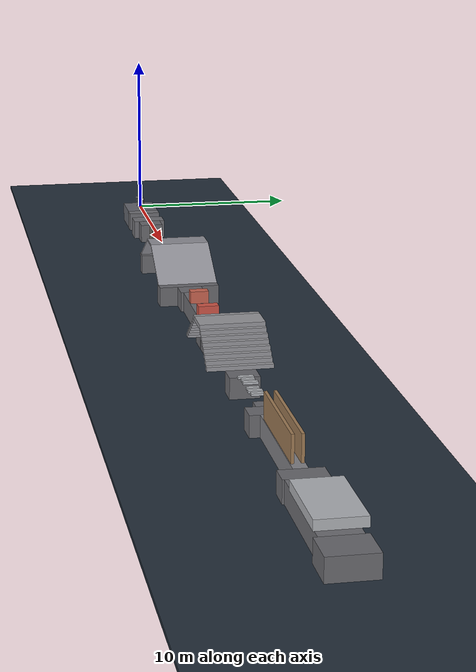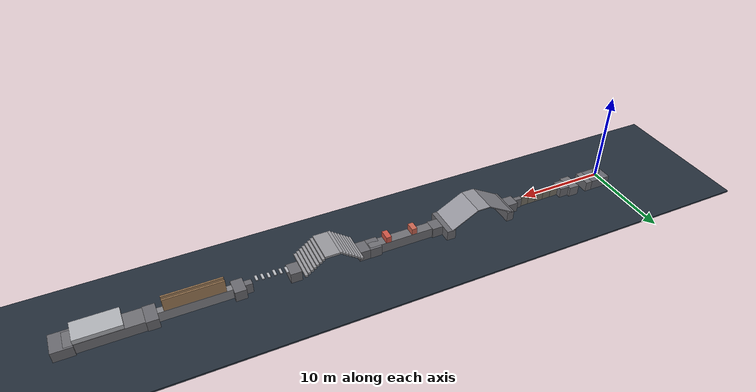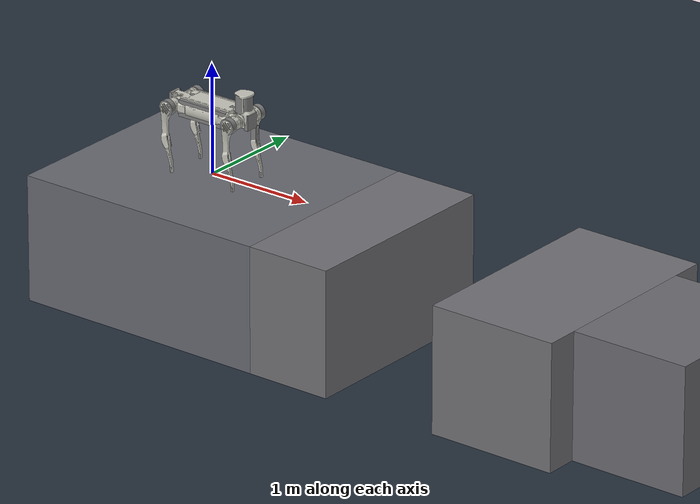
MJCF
<mujoco model="parkour_hard_line">
  <include file="b2.xml"/>
  <!-- Linear hard test track built from the level-10 variants of:
       jumpgap, singlebridge, cross_slope, hurdle, cross_stairs,
       air_beams, corridor, air_stones. -->
  <statistic center="0 0 0.16" extent="1.1" />

  <visual>
    <headlight diffuse="0.6 0.6 0.6" ambient="0.3 0.3 0.3" specular="0 0 0" />
    <rgba haze="0.15 0.25 0.35 1" />
    <global azimuth="-130" elevation="-20" />
  </visual>

  <asset>
    <texture type="skybox" builtin="gradient" rgb1="0.3 0.5 0.7" rgb2="0 0 0" width="512" height="3072" />
    <texture type="2d" name="groundplane" builtin="checker" mark="edge" rgb1="0.18 0.22 0.28" rgb2="0.10 0.14 0.18" markrgb="0.8 0.8 0.8" width="300" height="300" />
    <material name="groundplane" texture="groundplane" texuniform="true" texrepeat="5 5" reflectance="0.0" />
  </asset>

  <worldbody>
    <light pos="30 0 8" dir="0 0 -1" directional="true" />

    <!-- Catch floor below the whole course so gaps/bridges/beams stay meaningful. -->
    <geom name="pit_floor" pos="30 0 -1.25" size="80 8 0.10" type="box" material="groundplane" />

    <!-- Start and inter-section connectors (top surface at z=0). -->
    <geom name="start_hub" pos="0 0 -0.60" type="box" size="1.20 1.00 0.60" rgba="0.40 0.41 0.44 1" />
    <geom name="connector_1" pos="4.80 0 -0.60" type="box" size="0.60 0.70 0.60" rgba="0.42 0.42 0.44 1" />
    <geom name="connector_2" pos="11.825 0 -0.60" type="box" size="0.60 0.70 0.60" rgba="0.42 0.42 0.44 1" />
    <geom name="connector_3" pos="21.325 0 -0.60" type="box" size="0.60 0.70 0.60" rgba="0.42 0.42 0.44 1" />
    <geom name="connector_4" pos="29.825 0 -0.60" type="box" size="0.60 0.80 0.60" rgba="0.42 0.42 0.44 1" />
    <geom name="connector_5" pos="37.275 0 -0.60" type="box" size="0.60 0.80 0.60" rgba="0.42 0.42 0.44 1" />
    <geom name="connector_6" pos="42.945 0 -0.60" type="box" size="0.60 0.90 0.60" rgba="0.42 0.42 0.44 1" />
    <geom name="connector_7" pos="51.345 0 -0.60" type="box" size="0.60 1.10 0.60" rgba="0.42 0.42 0.44 1" />
    <geom name="finish_platform" pos="59.295 0 -0.60" type="box" size="1.00 1.20 0.60" rgba="0.42 0.42 0.44 1" />

    <!-- 1. jumpgap, level 10 -->
    <body name="jumpgap_segment" pos="0.30 0 0">
      <geom name="jumpgap_takeoff" pos="1.30 0 -0.60" type="box" size="0.40 1.0 0.60" rgba="0.44 0.44 0.46 1" />
      <geom name="jumpgap_landing" pos="3.40 0 -0.60" type="box" size="0.60 1.0 0.60" rgba="0.44 0.44 0.46 1" />
    </body>

    <!-- 2. singlebridge, level 10 -->
    <body name="singlebridge_segment" pos="4.50 0 0">
      <geom name="singlebridge_bridge_1" pos="1.40 0 -0.60" type="box" size="0.50 0.13 0.60" rgba="0.47 0.45 0.40 1" />
      <geom name="singlebridge_bridge_2" pos="2.40 0 -0.59" type="box" size="0.50 0.13 0.61" rgba="0.47 0.45 0.40 1" />
      <geom name="singlebridge_bridge_3" pos="3.40 0 -0.58" type="box" size="0.50 0.13 0.62" rgba="0.47 0.45 0.40 1" />
      <geom name="singlebridge_bridge_4" pos="4.40 0 -0.59" type="box" size="0.50 0.13 0.61" rgba="0.47 0.45 0.40 1" />
      <geom name="singlebridge_bridge_5" pos="5.40 0 -0.60" type="box" size="0.50 0.13 0.60" rgba="0.47 0.45 0.40 1" />
      <geom name="singlebridge_landing" pos="6.30 0 -0.60" type="box" size="0.425 0.25 0.60" rgba="0.42 0.42 0.44 1" />
    </body>

    <!-- 3. cross_slope, level 10 -->
    <body name="crossslope_segment" pos="10.626804355117875 0 0">
      <geom name="crossslope_entry_platform" pos="2.198195644882125 0 -0.60" type="box" size="0.40 1.75 0.60" rgba="0.42 0.42 0.44 1" />
      <geom name="crossslope_up" pos="3.524760152799509 0 0.811561136490367" type="box" size="1.7265645079173844 1.75 0.05" quat="0.9666377993314406 0  -0.25614715478347516 0" rgba="0.57 0.57 0.60 1" />
      <geom name="crossslope_top" pos="5.75 0 1.66" type="box" size="0.75 1.75 0.05" rgba="0.57 0.57 0.60 1" />
      <geom name="crossslope_down" pos="7.975239847799509 0 0.811561136490367" type="box" size="1.7265645079173844 1.75 0.05" quat="0.9666377993314406 0 0.25614715478347516 0" rgba="0.57 0.57 0.60 1" />
      <geom name="crossslope_end_platform" pos="9.598195644882125 0 -0.60" type="box" size="0.50 1.75 0.60" rgba="0.42 0.42 0.44 1" />
    </body>

    <!-- 4. hurdle, level 10 -->
    <body name="hurdle_segment" pos="21.025 0 0">
      <geom name="hurdle_lane" pos="4.50 0 -0.60" type="box" size="3.60 0.55 0.60" rgba="0.44 0.44 0.46 1" />
      <geom name="hurdle_1" pos="3.00 0 0.35" type="box" size="0.30 0.52 0.35" rgba="0.80 0.40 0.32 1" />
      <geom name="hurdle_2" pos="6.00 0 0.35" type="box" size="0.30 0.58 0.35" rgba="0.82 0.34 0.28 1" />
      <geom name="hurdle_landing" pos="7.55 0 -0.60" type="box" size="0.65 0.82 0.60" rgba="0.42 0.42 0.44 1" />
    </body>

    <!-- 5. cross_stairs, level 10 -->
    <body name="crossstairs_segment" pos="28.425 0 0">
      <geom name="crossstairs_1" pos="2.155 0 0.115" type="box" size="0.155 1.75 0.115" rgba="0.60 0.60 0.62 1" />
      <geom name="crossstairs_2" pos="2.465 0 0.34500000000000003" type="box" size="0.155 1.75 0.115" rgba="0.60 0.60 0.62 1" />
      <geom name="crossstairs_3" pos="2.775 0 0.5750000000000001" type="box" size="0.155 1.75 0.115" rgba="0.60 0.60 0.62 1" />
      <geom name="crossstairs_4" pos="3.085 0 0.805" type="box" size="0.155 1.75 0.115" rgba="0.60 0.60 0.62 1" />
      <geom name="crossstairs_5" pos="3.395 0 1.0350000000000001" type="box" size="0.155 1.75 0.115" rgba="0.60 0.60 0.62 1" />
      <geom name="crossstairs_6" pos="3.705 0 1.2650000000000001" type="box" size="0.155 1.75 0.115" rgba="0.60 0.60 0.62 1" />
      <geom name="crossstairs_7" pos="4.015000000000001 0 1.495" type="box" size="0.155 1.75 0.115" rgba="0.60 0.60 0.62 1" />
      <geom name="crossstairs_8" pos="4.325 0 1.725" type="box" size="0.155 1.75 0.115" rgba="0.60 0.60 0.62 1" />
      <geom name="crossstairs_top" pos="5.28 0 1.725" type="box" size="0.8 1.75 0.115" rgba="0.60 0.60 0.62 1" />
      <geom name="crossstairs_9" pos="6.235 0 1.495" type="box" size="0.155 1.75 0.115" rgba="0.60 0.60 0.62 1" />
      <geom name="crossstairs_10" pos="6.545 0 1.2650000000000001" type="box" size="0.155 1.75 0.115" rgba="0.60 0.60 0.62 1" />
      <geom name="crossstairs_11" pos="6.8549999999999995 0 1.0350000000000001" type="box" size="0.155 1.75 0.115" rgba="0.60 0.60 0.62 1" />
      <geom name="crossstairs_12" pos="7.164999999999999 0 0.8050000000000002" type="box" size="0.155 1.75 0.115" rgba="0.60 0.60 0.62 1" />
      <geom name="crossstairs_13" pos="7.474999999999999 0 0.5750000000000002" type="box" size="0.155 1.75 0.115" rgba="0.60 0.60 0.62 1" />
      <geom name="crossstairs_14" pos="7.784999999999998 0 0.3450000000000002" type="box" size="0.155 1.75 0.115" rgba="0.60 0.60 0.62 1" />
      <geom name="crossstairs_15" pos="8.094999999999999 0 0.11500000000000019" type="box" size="0.155 1.75 0.115" rgba="0.60 0.60 0.62 1" />
    </body>

    <!-- 6. air_beams, level 10 -->
    <body name="airbeams_segment" pos="36.825 0 0">
      <geom name="airbeams_beam_1" pos="1.18 0 0.06" type="box" size="0.13 0.41 0.06" rgba="0.73 0.74 0.76 1" />
      <geom name="airbeams_beam_2" pos="1.80 0 0.12" type="box" size="0.13 0.35 0.06" rgba="0.73 0.74 0.76 1" />
      <geom name="airbeams_beam_3" pos="2.42 0 0.18" type="box" size="0.13 0.39 0.06" rgba="0.73 0.74 0.76 1" />
      <geom name="airbeams_beam_4" pos="3.04 0 0.09" type="box" size="0.13 0.33 0.06" rgba="0.73 0.74 0.76 1" />
      <geom name="airbeams_beam_5" pos="3.66 0 0.15" type="box" size="0.13 0.37 0.06" rgba="0.73 0.74 0.76 1" />
      <geom name="airbeams_beam_6" pos="4.28 0 0.21" type="box" size="0.13 0.34 0.06" rgba="0.73 0.74 0.76 1" />
      <geom name="airbeams_landing" pos="5.145 0 -0.60" type="box" size="0.375 0.34 0.60" rgba="0.42 0.42 0.44 1" />
    </body>

    <!-- 7. corridor, level 10 -->
    <body name="corridor_segment" pos="42.645 0 0">
      <geom name="corridor_floor" pos="4.50 0 -0.60" type="box" size="3.60 0.36 0.60" rgba="0.52 0.52 0.54 1" />
      <geom name="corridor_wall_left" pos="4.50 0.24 0.70" type="box" size="3.00 0.08 0.70" rgba="0.63 0.49 0.34 1" />
      <geom name="corridor_wall_right" pos="4.50 -0.24 0.70" type="box" size="3.00 0.08 0.70" rgba="0.63 0.49 0.34 1" />
    </body>

    <!-- 8. air_stones, level 10 -->
    <body name="airstones_segment" pos="51.045 0 0">
      <geom name="airstones_lane" pos="4.50 0 -0.60" type="box" size="3.60 1.00 0.60" rgba="0.44 0.44 0.46 1" />
      <geom name="airstones_platform" pos="5.00 0 0.50" type="box" size="2.25 1.20 0.25" rgba="0.70 0.71 0.73 1" />
    </body>
  </worldbody>
  <keyframe>
    <key name="b2_start" qpos="0 0 0.64 1 0 0 0 0.1 0.8 -1.5 -0.1 0.8 -1.5 0.1 1.0 -1.5 -0.1 1.0 -1.5"/>
  </keyframe>
</mujoco>

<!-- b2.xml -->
<mujoco model="b2_description">
  <compiler angle="radian" meshdir="assets" />
  <statistic meansize="0.25" extent="2.0" center="0 0 -0.35" />
  <default>
    <joint damping="0.02" armature="0.02" frictionloss="0.05" />
    <geom condim="3" friction="0.9 0.02 0.01" />
    <default class="visual">
      <geom type="mesh" contype="0" conaffinity="0" group="2" />
    </default>
  </default>
  <asset>
    <material name="b2_body" rgba="0.78 0.78 0.74 1" />
    <material name="black" rgba="0.06 0.06 0.06 1" />
    <mesh name="FL_calf_mesh" file="FL_calf.obj" />
    <mesh name="FL_hip_mesh" file="FL_hip.obj" />
    <mesh name="FL_thigh_mesh" file="FL_thigh.obj" />
    <mesh name="FR_calf_mesh" file="FR_calf.obj" />
    <mesh name="FR_hip_mesh" file="FR_hip.obj" />
    <mesh name="FR_thigh_mesh" file="FR_thigh.obj" />
    <mesh name="RL_calf_mesh" file="RL_calf.obj" />
    <mesh name="RL_hip_mesh" file="RL_hip.obj" />
    <mesh name="RL_thigh_mesh" file="RL_thigh.obj" />
    <mesh name="RR_calf_mesh" file="RR_calf.obj" />
    <mesh name="RR_hip_mesh" file="RR_hip.obj" />
    <mesh name="RR_thigh_mesh" file="RR_thigh.obj" />
    <mesh name="base_link_mesh" file="base_link.obj" />
  </asset>
  <worldbody>
    <body name="base" pos="0 0 0.58">
      <inertial pos="0.000458 0.005261 0.000665" mass="35.86" fullinertia="0.27466 1.0618 1.1825 -0.000622 0.00315 -0.00139" />
      <freejoint name="root" />
      <geom name="base_visual_0" mesh="base_link_mesh" material="b2_body" class="visual" />
      <geom name="base_collision_0" type="box" size="0.25 0.14 0.075" />
      <body pos="0.34218 0 0.17851" name="lidar_link">
        <geom pos="0 0 -0.02" name="lidar_link_collision_0" type="cylinder" size="0.076 0.08" />
      </body>
      <body pos="0.41251 0.024997 0.04765" quat="0.27059575 -0.65328103 0.65328343 -0.27059675" name="f_dc_link" />
      <body pos="-0.4081 -0.025 0.024861" quat="0.27075907 -0.65321336 -0.65321576 0.27076006" name="r_dc_link" />
      <body pos="0 -0.02341 0.04927" name="imu_link" />
      <body name="head_Link">
        <inertial pos="0.33989 -0.000168 0.12029" mass="3.6885" fullinertia="0.026455 0.029221 0.010918 3.15e-05 0.00166 -3.27e-05" />
        <geom pos="0.41 0 0.005" name="head_Link_collision_0" type="box" size="0.02 0.06 0.07" />
      </body>
      <body name="tail_link">
        <inertial pos="-0.37448 0.000488 0.006495" mass="0.795" fullinertia="0.0028118 0.0047506 0.0029154 1.95e-05 -7.87e-06 -1.57e-05" />
        <geom pos="-0.405 0 0.005" name="tail_link_collision_0" type="box" size="0.0125 0.06 0.07" />
      </body>
      <body pos="0.3285 0.072 0" name="FL_hip">
        <inertial pos="-0.003841 -0.009068 0" mass="2.673" fullinertia="0.0033188 0.0048743 0.0037087 7.16e-05 -3.77e-07 4e-09" />
        <joint name="FL_hip_joint" axis="1 0 0" range="-0.87 0.87" actuatorfrcrange="-200 200" />
        <geom name="FL_hip_visual_0" mesh="FL_hip_mesh" material="b2_body" class="visual" />
        <geom pos="0 0.12 0" quat="0.70710678 0.70710678 0 0" name="FL_hip_collision_0" type="cylinder" size="0.07 0.025" />
        <body pos="0 0.11973 0" name="FL_thigh">
          <inertial pos="-0.006279 -0.032049 -0.057835" mass="4.536" fullinertia="0.062299 0.061399 0.0081997 0.00087781 -0.0036475 0.0083537" />
          <joint name="FL_thigh_joint" axis="0 1 0" range="-0.94 4.69" actuatorfrcrange="-200 200" />
          <geom name="FL_thigh_visual_0" mesh="FL_thigh_mesh" material="b2_body" class="visual" />
          <geom pos="-0.025 0 -0.16" quat="0.70738827 0 0.70682518 0" name="FL_thigh_collision_0" type="box" size="0.16 0.02225 0.027" />
          <body pos="0 -8.6984e-05 -0.35" name="FL_calf">
            <inertial pos="0.012422 0 -0.12499" mass="0.404" fullinertia="0.01143 0.011534 0.000331 0 0.000643 0" />
            <joint name="FL_calf_joint" axis="0 1 0" range="-2.82 -0.43" actuatorfrcrange="-320 320" />
            <geom name="FL_calf_visual_0" mesh="FL_calf_mesh" material="b2_body" class="visual" />
            <geom pos="-0.002 0 -0.03" quat="0.82533561 0 0.56464247 0" name="FL_calf_collision_0" type="box" size="0.05 0.01225 0.009" />
            <geom pos="0.022 0 -0.1" quat="0.78070695 0 0.62489732 0" name="FL_calf_collision_1" type="box" size="0.05 0.01225 0.009" />
            <geom pos="0.036 0 -0.225" quat="0.72138236 0 0.692537 0" name="FL_calf_collision_2" type="box" size="0.075 0.01225 0.0075" />
            <geom pos="0.023 0 -0.31" quat="0.54030231 0 0.84147098 0" name="FL_calf_collision_3" type="box" size="0.025 0.014 0.0175" />
            <body pos="0 0 -0.35" name="FL_foot">
              <inertial pos="-0.006511 0 -0.010144" mass="0.126" fullinertia="3.8e-05 4.1e-05 4.2e-05 0 1.1e-05 0" />
              <geom quat="0.70738827 0.70682518 0 0" name="FL_foot_collision_0" type="sphere" size="0.032" />
            </body>
          </body>
          <body pos="0 -0.05788 0" name="FL_calf_rotor">
            <inertial pos="0 0 0" mass="0.2734" fullinertia="0.000144463 0.000144463 0.000263053 0 0 0" />
            <geom quat="0.70710678 0.70710678 0 0" name="FL_calf_rotor_collision_0" type="cylinder" size="0.05 0.01" />
          </body>
        </body>
        <body pos="0 -0.00798 0" name="FL_thigh_rotor">
          <inertial pos="0 0 0" mass="0.2734" fullinertia="0.000144463 0.000144463 0.000263053 0 0 0" />
          <geom quat="0.70710678 0.70710678 0 0" name="FL_thigh_rotor_collision_0" type="cylinder" size="0.05 0.01" />
        </body>
      </body>
      <body pos="0.20205 0.072 0" name="FL_hip_rotor">
        <inertial pos="0 0 0" mass="0.2734" fullinertia="0.000144463 0.000144463 0.000263053 0 0 0" />
        <geom quat="0.70710678 0 0.70710678 0" name="FL_hip_rotor_collision_0" type="cylinder" size="0.05 0.01" />
      </body>
      <body pos="0.3285 -0.072 0" name="FR_hip">
        <inertial pos="-0.009305 0.010228 0.000264" mass="2.673" fullinertia="0.0026431 0.0046728 0.0034208 -0.00019234 -6.76e-06 7.16e-06" />
        <joint name="FR_hip_joint" axis="1 0 0" range="-0.87 0.87" actuatorfrcrange="-200 200" />
        <geom name="FR_hip_visual_0" mesh="FR_hip_mesh" material="b2_body" class="visual" />
        <geom pos="0 -0.12 0" quat="0.70710678 0.70710678 0 0" name="FR_hip_collision_0" type="cylinder" size="0.07 0.025" />
        <body pos="0 -0.11973 0" name="FR_thigh">
          <inertial pos="-0.006279 0.032049 -0.057835" mass="4.536" fullinertia="0.06229908 0.06139927 0.008199745 -0.000877808 -0.003647464 -0.008353671" />
          <joint name="FR_thigh_joint" axis="0 1 0" range="-0.94 4.69" actuatorfrcrange="-200 200" />
          <geom name="FR_thigh_visual_0" mesh="FR_thigh_mesh" material="b2_body" class="visual" />
          <geom pos="-0.03 0 -0.2" quat="0.70738827 0 0.70682518 0" name="FR_thigh_collision_0" type="box" size="0.125 0.014 0.02" />
          <body pos="0 8.6986e-05 -0.35" name="FR_calf">
            <inertial pos="0.012422 0 -0.12499" mass="0.404" fullinertia="0.01143 0.011534 0.000331 0 0.000643 0" />
            <joint name="FR_calf_joint" axis="0 1 0" range="-2.82 -0.43" actuatorfrcrange="-320 320" />
            <geom name="FR_calf_visual_0" mesh="FR_calf_mesh" material="b2_body" class="visual" />
            <geom pos="-0.002 0 -0.03" quat="0.82533561 0 0.56464247 0" name="FR_calf_collision_0" type="box" size="0.05 0.01225 0.009" />
            <geom pos="0.022 0 -0.1" quat="0.78070695 0 0.62489732 0" name="FR_calf_collision_1" type="box" size="0.05 0.01225 0.009" />
            <geom pos="0.036 0 -0.225" quat="0.72138236 0 0.692537 0" name="FR_calf_collision_2" type="box" size="0.075 0.01225 0.0075" />
            <geom pos="0.023 0 -0.31" quat="0.54030231 0 0.84147098 0" name="FR_calf_collision_3" type="box" size="0.025 0.014 0.0175" />
            <body pos="0 0 -0.35" name="FR_foot">
              <inertial pos="-0.006511 0 -0.010144" mass="0.126" fullinertia="3.8e-05 4.1e-05 4.2e-05 0 1.1e-05 0" />
              <geom quat="0.70738827 0.70682518 0 0" name="FR_foot_collision_0" type="sphere" size="0.032" />
            </body>
          </body>
          <body pos="0 0.05788 0" name="FR_calf_rotor">
            <inertial pos="0 0 0" mass="0.2734" fullinertia="0.000144463 0.000144463 0.000263053 0 0 0" />
            <geom quat="0.70710678 0.70710678 0 0" name="FR_calf_rotor_collision_0" type="cylinder" size="0.05 0.01" />
          </body>
        </body>
        <body pos="0 0.00798 0" name="FR_thigh_rotor">
          <inertial pos="0 0 0" mass="0.2734" fullinertia="0.000144463 0.000144463 0.000263053 0 0 0" />
          <geom quat="0.70710678 0.70710678 0 0" name="FR_thigh_rotor_collision_0" type="cylinder" size="0.05 0.01" />
        </body>
      </body>
      <body pos="0.20205 -0.072 0" name="FR_hip_rotor">
        <inertial pos="0 0 0" mass="0.2734" fullinertia="0.000144463 0.000144463 0.000263053 0 0 0" />
        <geom quat="0.70710678 0 0.70710678 0" name="FR_hip_rotor_collision_0" type="cylinder" size="0.05 0.01" />
      </body>
      <body pos="-0.3285 0.072 0" name="RL_hip">
        <inertial pos="0.009305 -0.010228 0.000264" mass="2.673" fullinertia="0.0026431 0.0046728 0.0034208 -0.00019234 6.76e-06 -7.16e-06" />
        <joint name="RL_hip_joint" axis="1 0 0" range="-0.87 0.87" actuatorfrcrange="-200 200" />
        <geom name="RL_hip_visual_0" mesh="RL_hip_mesh" material="b2_body" class="visual" />
        <geom pos="0 0.12 0" quat="0.70710678 0.70710678 0 0" name="RL_hip_collision_0" type="cylinder" size="0.07 0.025" />
        <body pos="0 0.11973 0" name="RL_thigh">
          <inertial pos="-0.006279 -0.032049 -0.057835" mass="4.536" fullinertia="0.06229908 0.06139927 0.008199745 0.000877808 -0.003647464 0.008353671" />
          <joint name="RL_thigh_joint" axis="0 1 0" range="-0.94 4.69" actuatorfrcrange="-200 200" />
          <geom name="RL_thigh_visual_0" mesh="RL_thigh_mesh" material="b2_body" class="visual" />
          <geom pos="-0.03 0 -0.2" quat="0.70738827 0 0.70682518 0" name="RL_thigh_collision_0" type="box" size="0.125 0.014 0.02" />
          <body pos="0 -8.6984e-05 -0.35" name="RL_calf">
            <inertial pos="0.012422 0 -0.12499" mass="0.404" fullinertia="0.01143 0.011534 0.000331 0 0.000643 0" />
            <joint name="RL_calf_joint" axis="0 1 0" range="-2.82 -0.43" actuatorfrcrange="-320 320" />
            <geom name="RL_calf_visual_0" mesh="RL_calf_mesh" material="b2_body" class="visual" />
            <geom pos="-0.002 0 -0.03" quat="0.82533561 0 0.56464247 0" name="RL_calf_collision_0" type="box" size="0.05 0.01225 0.009" />
            <geom pos="0.022 0 -0.1" quat="0.78070695 0 0.62489732 0" name="RL_calf_collision_1" type="box" size="0.05 0.01225 0.009" />
            <geom pos="0.036 0 -0.225" quat="0.72138236 0 0.692537 0" name="RL_calf_collision_2" type="box" size="0.075 0.01225 0.0075" />
            <geom pos="0.023 0 -0.31" quat="0.54030231 0 0.84147098 0" name="RL_calf_collision_3" type="box" size="0.025 0.014 0.0175" />
            <body pos="0 0 -0.35" name="RL_foot">
              <inertial pos="-0.006511 0 -0.010144" mass="0.126" fullinertia="3.8e-05 4.1e-05 4.2e-05 0 1.1e-05 0" />
              <geom quat="0.70738827 0.70682518 0 0" name="RL_foot_collision_0" type="sphere" size="0.032" />
            </body>
          </body>
          <body pos="0 -0.05788 0" name="RL_calf_rotor">
            <inertial pos="0 0 0" mass="0.2734" fullinertia="0.000144463 0.000144463 0.000263053 0 0 0" />
            <geom quat="0.70710678 0.70710678 0 0" name="RL_calf_rotor_collision_0" type="cylinder" size="0.05 0.01" />
          </body>
        </body>
        <body pos="0 -0.00798 0" name="RL_thigh_rotor">
          <inertial pos="0 0 0" mass="0.2734" fullinertia="0.000144463 0.000144463 0.000263053 0 0 0" />
          <geom quat="0.70710678 0.70710678 0 0" name="RL_thigh_rotor_collision_0" type="cylinder" size="0.05 0.01" />
        </body>
      </body>
      <body pos="-0.20205 0.072 0" name="RL_hip_rotor">
        <inertial pos="0 0 0" mass="0.2734" fullinertia="0.000144463 0.000144463 0.000263053 0 0 0" />
        <geom quat="0.70710678 0 0.70710678 0" name="RL_hip_rotor_collision_0" type="cylinder" size="0.05 0.01" />
      </body>
      <body pos="-0.3285 -0.072 0" name="RR_hip">
        <inertial pos="0.003841 0.009068 0" mass="2.673" fullinertia="0.0033188 0.0048743 0.0037087 7.16e-05 3.77e-07 -4e-09" />
        <joint name="RR_hip_joint" axis="1 0 0" range="-0.87 0.87" actuatorfrcrange="-200 200" />
        <geom name="RR_hip_visual_0" mesh="RR_hip_mesh" material="b2_body" class="visual" />
        <geom pos="0 -0.12 0" quat="0.70710678 0.70710678 0 0" name="RR_hip_collision_0" type="cylinder" size="0.07 0.025" />
        <body pos="0 -0.11973 0" name="RR_thigh">
          <inertial pos="-0.006279 0.032049 -0.057835" mass="4.536" fullinertia="0.062299 0.061399 0.0081997 -0.00087781 -0.0036475 -0.0083537" />
          <joint name="RR_thigh_joint" axis="0 1 0" range="-0.94 4.69" actuatorfrcrange="-200 200" />
          <geom name="RR_thigh_visual_0" mesh="RR_thigh_mesh" material="b2_body" class="visual" />
          <geom pos="-0.03 0 -0.2" quat="0.70738827 0 0.70682518 0" name="RR_thigh_collision_0" type="box" size="0.125 0.014 0.02" />
          <body pos="0 8.6986e-05 -0.35" name="RR_calf">
            <inertial pos="0.012422 0 -0.12499" mass="0.404" fullinertia="0.01143 0.011534 0.000331 0 0.000643 0" />
            <joint name="RR_calf_joint" axis="0 1 0" range="-2.82 -0.43" actuatorfrcrange="-320 320" />
            <geom name="RR_calf_visual_0" mesh="RR_calf_mesh" material="b2_body" class="visual" />
            <geom pos="-0.002 0 -0.03" quat="0.82533561 0 0.56464247 0" name="RR_calf_collision_0" type="box" size="0.05 0.01225 0.009" />
            <geom pos="0.022 0 -0.1" quat="0.78070695 0 0.62489732 0" name="RR_calf_collision_1" type="box" size="0.05 0.01225 0.009" />
            <geom pos="0.036 0 -0.225" quat="0.72138236 0 0.692537 0" name="RR_calf_collision_2" type="box" size="0.075 0.01225 0.0075" />
            <geom pos="0.023 0 -0.31" quat="0.54030231 0 0.84147098 0" name="RR_calf_collision_3" type="box" size="0.025 0.014 0.0175" />
            <body pos="0 -8.6984e-05 -0.35" name="RR_foot">
              <inertial pos="-0.006511 0 -0.010144" mass="0.126" fullinertia="3.8e-05 4.1e-05 4.2e-05 0 1.1e-05 0" />
              <geom quat="0.70738827 0.70682518 0 0" name="RR_foot_collision_0" type="sphere" size="0.032" />
            </body>
          </body>
          <body pos="0 0.05788 0" name="RR_calf_rotor">
            <inertial pos="0 0 0" mass="0.2734" fullinertia="0.000144463 0.000144463 0.000263053 0 0 0" />
            <geom quat="0.70710678 0.70710678 0 0" name="RR_calf_rotor_collision_0" type="cylinder" size="0.05 0.01" />
          </body>
        </body>
        <body pos="0 0.00798 0" name="RR_thigh_rotor">
          <inertial pos="0 0 0" mass="0.2734" fullinertia="0.000144463 0.000144463 0.000263053 0 0 0" />
          <geom quat="0.70710678 0.70710678 0 0" name="RR_thigh_rotor_collision_0" type="cylinder" size="0.05 0.01" />
        </body>
      </body>
      <body pos="-0.20205 -0.072 0" name="RR_hip_rotor">
        <inertial pos="0 0 0" mass="0.2734" fullinertia="0.000144463 0.000144463 0.000263053 0 0 0" />
        <geom quat="0.70710678 0 0.70710678 0" name="RR_hip_rotor_collision_0" type="cylinder" size="0.05 0.01" />
      </body>
      <body pos="0.39079 0 -0.013433" quat="0.49999816 -0.5 0.50000184 -0.5" name="f_oc_link" />
      <body pos="-0.38451 0 -0.023249" quat="0.49999816 -0.5 -0.50000184 0.5" name="r_oc_link" />
    </body>
  </worldbody>
  <contact>
    <!-- Training disables robot self-collisions; keep same-leg internal contacts from locking the leg. -->
    <exclude body1="base" body2="FL_hip_rotor" />
    <exclude body1="FL_hip" body2="FL_hip_rotor" />
    <exclude body1="FL_hip" body2="FL_thigh" />
    <exclude body1="FL_hip" body2="FL_thigh_rotor" />
    <exclude body1="FL_thigh" body2="FL_thigh_rotor" />
    <exclude body1="FL_thigh" body2="FL_calf" />
    <exclude body1="FL_thigh" body2="FL_calf_rotor" />
    <exclude body1="FL_calf" body2="FL_calf_rotor" />
    <exclude body1="FL_calf" body2="FL_foot" />
    <exclude body1="base" body2="FR_hip_rotor" />
    <exclude body1="FR_hip" body2="FR_hip_rotor" />
    <exclude body1="FR_hip" body2="FR_thigh" />
    <exclude body1="FR_hip" body2="FR_thigh_rotor" />
    <exclude body1="FR_thigh" body2="FR_thigh_rotor" />
    <exclude body1="FR_thigh" body2="FR_calf" />
    <exclude body1="FR_thigh" body2="FR_calf_rotor" />
    <exclude body1="FR_calf" body2="FR_calf_rotor" />
    <exclude body1="FR_calf" body2="FR_foot" />
    <exclude body1="base" body2="RL_hip_rotor" />
    <exclude body1="RL_hip" body2="RL_hip_rotor" />
    <exclude body1="RL_hip" body2="RL_thigh" />
    <exclude body1="RL_hip" body2="RL_thigh_rotor" />
    <exclude body1="RL_thigh" body2="RL_thigh_rotor" />
    <exclude body1="RL_thigh" body2="RL_calf" />
    <exclude body1="RL_thigh" body2="RL_calf_rotor" />
    <exclude body1="RL_calf" body2="RL_calf_rotor" />
    <exclude body1="RL_calf" body2="RL_foot" />
    <exclude body1="base" body2="RR_hip_rotor" />
    <exclude body1="RR_hip" body2="RR_hip_rotor" />
    <exclude body1="RR_hip" body2="RR_thigh" />
    <exclude body1="RR_hip" body2="RR_thigh_rotor" />
    <exclude body1="RR_thigh" body2="RR_thigh_rotor" />
    <exclude body1="RR_thigh" body2="RR_calf" />
    <exclude body1="RR_calf" body2="RR_calf_rotor" />
    <exclude body1="RR_thigh" body2="RR_calf_rotor" />
    <exclude body1="RR_calf" body2="RR_foot" />
  </contact>
  <actuator>
    <motor name="FL_hip" joint="FL_hip_joint" ctrllimited="true" ctrlrange="-200 200" />
    <motor name="FL_thigh" joint="FL_thigh_joint" ctrllimited="true" ctrlrange="-200 200" />
    <motor name="FL_calf" joint="FL_calf_joint" ctrllimited="true" ctrlrange="-320 320" />
    <motor name="FR_hip" joint="FR_hip_joint" ctrllimited="true" ctrlrange="-200 200" />
    <motor name="FR_thigh" joint="FR_thigh_joint" ctrllimited="true" ctrlrange="-200 200" />
    <motor name="FR_calf" joint="FR_calf_joint" ctrllimited="true" ctrlrange="-320 320" />
    <motor name="RL_hip" joint="RL_hip_joint" ctrllimited="true" ctrlrange="-200 200" />
    <motor name="RL_thigh" joint="RL_thigh_joint" ctrllimited="true" ctrlrange="-200 200" />
    <motor name="RL_calf" joint="RL_calf_joint" ctrllimited="true" ctrlrange="-320 320" />
    <motor name="RR_hip" joint="RR_hip_joint" ctrllimited="true" ctrlrange="-200 200" />
    <motor name="RR_thigh" joint="RR_thigh_joint" ctrllimited="true" ctrlrange="-200 200" />
    <motor name="RR_calf" joint="RR_calf_joint" ctrllimited="true" ctrlrange="-320 320" />
  </actuator>
</mujoco>
